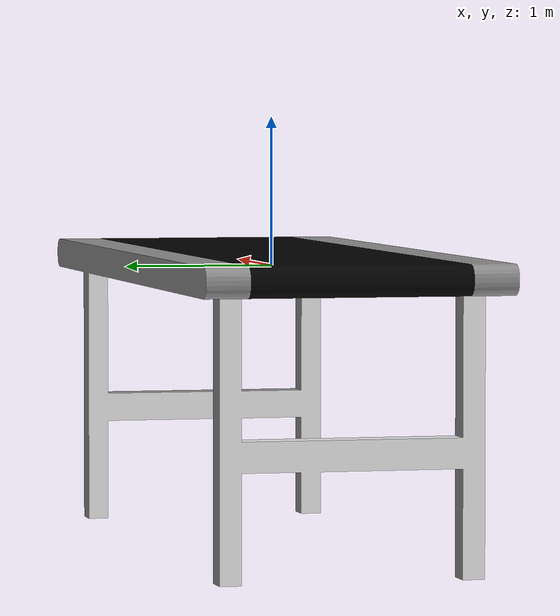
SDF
<?xml version="1.0" ?>
<sdf version="1.5">
  <model name="conveyor">
    <static>true</static>
    <link name="conveyor_link">
      <collision name="collision">
        <geometry>
          <box>
            <size>1 1 1 </size>
          </box>
        </geometry>
      </collision>
      <visual name="conveyor_mesh">
      <cast_shadows>true</cast_shadows>
        <geometry>
          <mesh>
            <uri>model://conveyor/meshes/conveyor.dae</uri>
          </mesh>
        </geometry>
      </visual>
    </link>
  </model>
</sdf>
